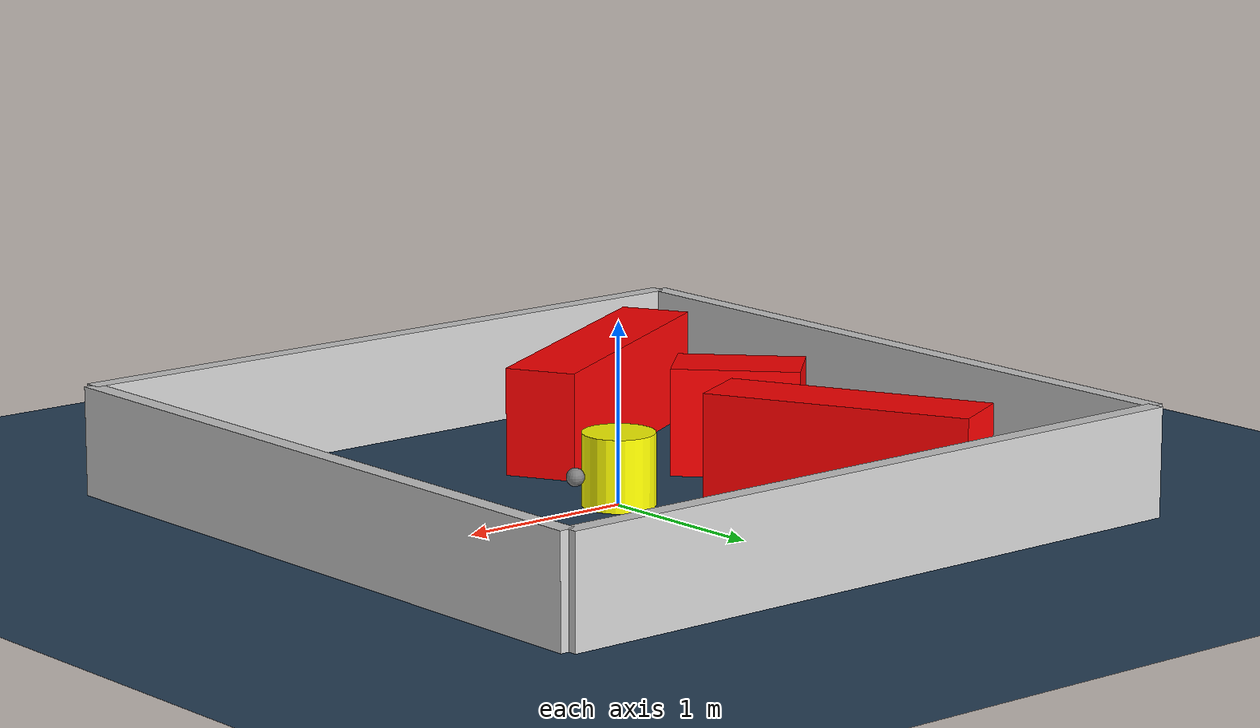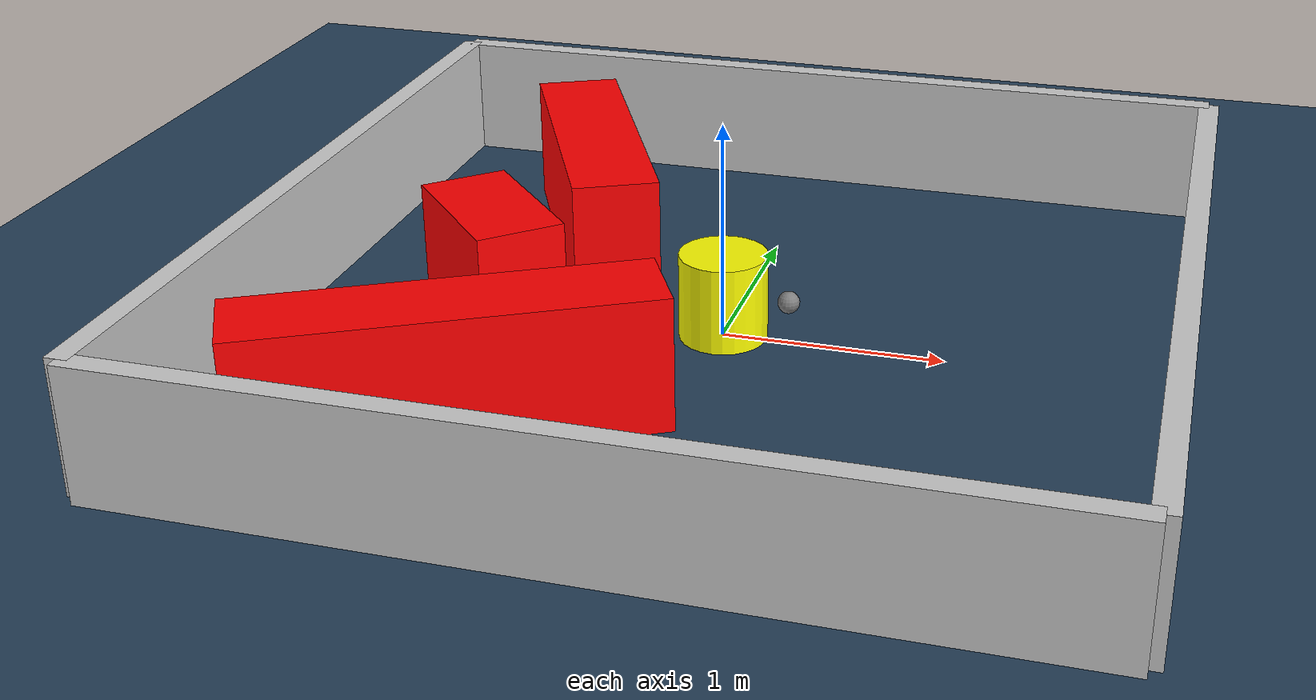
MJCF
<?xml version="1.0" ?>
<mujoco model="generated_environment">
  <option timestep="0.01" integrator="RK4" cone="elliptic"/>
  <default>
    <geom density="1"/>
  </default>
  <asset>
    <texture builtin="gradient" height="3072" rgb1="0.3 0.5 0.7" rgb2="0 0 0" type="skybox" width="512"/>
    <texture builtin="checker" height="300" mark="edge" markrgb="0.8 0.8 0.8" name="groundplane" rgb1="0.2 0.3 0.4" rgb2="0.1 0.2 0.3" type="2d" width="300"/>
    <material name="groundplane" reflectance="0.2" texrepeat="5 5" texture="groundplane" texuniform="true"/>
    <material name="robot" rgba="0.0 1.0 0.0 1"/>
  </asset>
  <worldbody>
    <light dir="0 0 -1" directional="true" pos="0 0 1.5"/>
    <geom condim="4" friction="1.0 0.005 0.001" material="groundplane" name="floor" size="0 0 0.05" type="plane"/>
    <body name="walls">
      <geom name="wall_1" condim="4" pos="-2.0 0.0 0.3" rgba="0.800000011920929 0.800000011920929 0.800000011920929 1.0" size="0.05 2.0 0.3" type="box"/>
      <geom name="wall_2" condim="4" pos="2.0 0.0 0.3" rgba="0.800000011920929 0.800000011920929 0.800000011920929 1.0" size="0.05 2.0 0.3" type="box"/>
      <geom name="wall_3" condim="4" pos="0.0 -2.0 0.3" rgba="0.800000011920929 0.800000011920929 0.800000011920929 1.0" size="2.0 0.05 0.3" type="box"/>
      <geom name="wall_4" condim="4" pos="0.0 2.0 0.3" rgba="0.800000011920929 0.800000011920929 0.800000011920929 1.0" size="2.0 0.05 0.3" type="box"/>
    </body>
    <body name="robot">
      <joint name="joint_x" type="slide" pos="0 0 0" axis="1 0 0"/>
      <joint name="joint_y" type="slide" pos="0 0 0" axis="0 1 0"/>
      <geom name="robot" type="sphere" pos="0.3 0.0 0.2" size="0.05" mass="5." friction="1.0 0.005 0.0001" condim="4" rgba="0.5 0.5 0.5 1.0"/>
      <site name="sensor_ball"/>
    </body>
    <body name="obstacle_movable_1">
      <geom name="obstacle_movable_1" condim="4" pos="0.0 0.0 0.2" euler="0 0 0.0" friction="1.0 0.005 0.001" rgba="1.0 1.0 0.0 1.0" size="0.2 0.2 0.0" type="cylinder" mass="0.1"/>
      <joint type="free"/>
    </body>
    <body name="obstacle_2_static">
      <geom name="obstacle_2_static" condim="4" pos="-1.0141918667324714 -0.1843953926004651 0.3" euler="0 0 313.05423242788646" friction="1.0 0.005 0.001" rgba="1 0 0 1" size="0.35415745600257087 0.2 0.3" type="box"/>
    </body>
    <body name="obstacle_3_static">
      <geom name="obstacle_3_static" condim="4" pos="-0.8794736075510429 0.834613113044876 0.3" euler="0 0 296.1841276543758" friction="1.0 0.005 0.001" rgba="1 0 0 1" size="0.7445425867919817 0.2 0.3" type="box"/>
    </body>
    <body name="obstacle_4_static">
      <geom name="obstacle_4_static" condim="4" pos="-0.8236152550295326 -1.1421776772942152 0.3" euler="0 0 28.420531443397863" friction="1.0 0.005 0.001" rgba="1 0 0 1" size="0.879909751908516 0.2 0.3" type="box"/>
    </body>
  </worldbody>
  <actuator>
    <motor name="actuator_x" joint="joint_x" gear="1" ctrlrange="-1 1"/>
    <motor name="actuator_y" joint="joint_y" gear="1" ctrlrange="-1 1"/>
  </actuator>
</mujoco>
